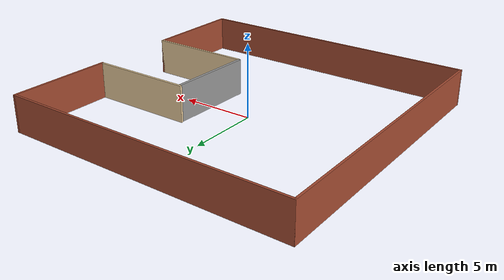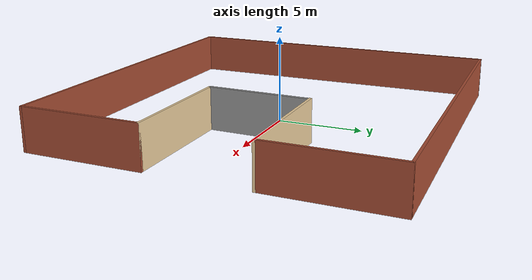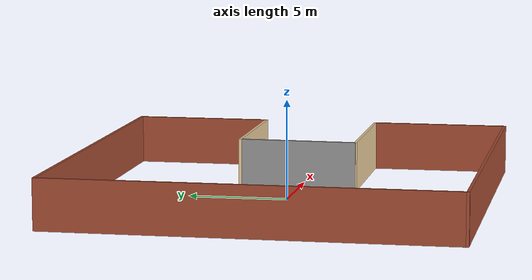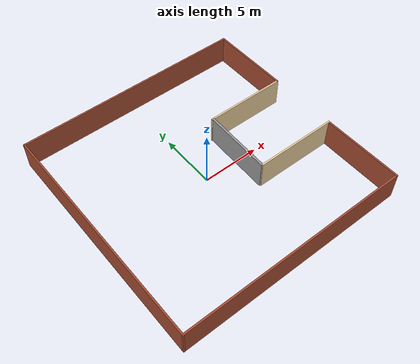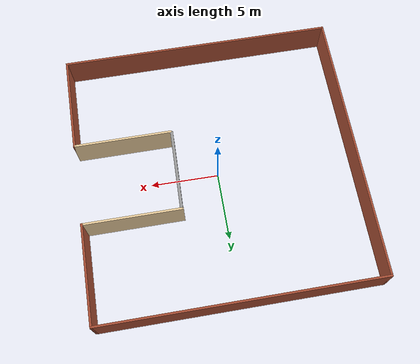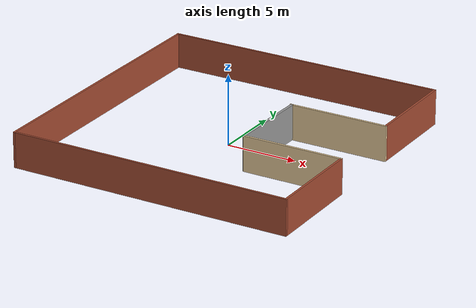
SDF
<?xml version='1.0'?>
<sdf version='1.6'>
  <model name='Building'>
    <pose frame=''>0 0 0 0 -0 0</pose>
    <link name='Door_0'>
      <collision name='Door_0_Collision'>
        <geometry>
          <box>
            <size>6 0.2 2.5</size>
          </box>
        </geometry>
        <pose frame=''>0 0 1.25 0 -0 0</pose>
      </collision>
      <visual name='Door_0_Visual'>
        <pose frame=''>0 0 1.25 0 -0 0</pose>
        <geometry>
          <box>
            <size>6 0.2 2.5</size>
          </box>
        </geometry>
        <material>
          <script>
            <uri>file://media/materials/scripts/gazebo.material</uri>
            <name>Gazebo/Grey</name>
          </script>
        </material>
      </visual>
      <pose frame=''>3 0 0 0 -0 1.54682</pose>
    </link>
    <link name='Wall_10'>
      <collision name='Wall_10_Collision'>
        <geometry>
          <box>
            <size>20.15 0.15 2.5</size>
          </box>
        </geometry>
        <pose frame=''>0 0 1.25 0 -0 0</pose>
      </collision>
      <visual name='Wall_10_Visual'>
        <pose frame=''>0 0 1.25 0 -0 0</pose>
        <geometry>
          <box>
            <size>20.15 0.15 2.5</size>
          </box>
        </geometry>
        <material>
          <script>
            <uri>file://media/materials/scripts/gazebo.material</uri>
            <name>Gazebo/Bricks</name>
          </script>
          <ambient>1 1 1 1</ambient>
        </material>
        <meta>
          <layer>0</layer>
        </meta>
      </visual>
      <pose frame=''>-10 0 0 0 -0 1.5708</pose>
    </link>
    <link name='Wall_11'>
      <collision name='Wall_11_Collision'>
        <geometry>
          <box>
            <size>20.15 0.15 2.5</size>
          </box>
        </geometry>
        <pose frame=''>0 0 1.25 0 -0 0</pose>
      </collision>
      <visual name='Wall_11_Visual'>
        <pose frame=''>0 0 1.25 0 -0 0</pose>
        <geometry>
          <box>
            <size>20.15 0.15 2.5</size>
          </box>
        </geometry>
        <material>
          <script>
            <uri>file://media/materials/scripts/gazebo.material</uri>
            <name>Gazebo/Bricks</name>
          </script>
          <ambient>1 1 1 1</ambient>
        </material>
        <meta>
          <layer>0</layer>
        </meta>
      </visual>
      <pose frame=''>0 10 0 0 -0 0</pose>
    </link>
    <link name='Wall_12'>
      <collision name='Wall_12_Collision'>
        <geometry>
          <box>
            <size>7.15 0.15 2.5</size>
          </box>
        </geometry>
        <pose frame=''>0 0 1.25 0 -0 0</pose>
      </collision>
      <visual name='Wall_12_Visual'>
        <pose frame=''>0 0 1.25 0 -0 0</pose>
        <geometry>
          <box>
            <size>7.15 0.15 2.5</size>
          </box>
        </geometry>
        <material>
          <script>
            <uri>file://media/materials/scripts/gazebo.material</uri>
            <name>Gazebo/Bricks</name>
          </script>
          <ambient>1 1 1 1</ambient>
        </material>
        <meta>
          <layer>0</layer>
        </meta>
      </visual>
      <pose frame=''>10 6.5 0 0 -0 -1.5708</pose>
    </link>
    <link name='Wall_13'>
      <collision name='Wall_13_Collision'>
        <geometry>
          <box>
            <size>7.15 0.15 2.5</size>
          </box>
        </geometry>
        <pose frame=''>0 0 1.25 0 -0 0</pose>
      </collision>
      <visual name='Wall_13_Visual'>
        <pose frame=''>0 0 1.25 0 -0 0</pose>
        <geometry>
          <box>
            <size>7.15 0.15 2.5</size>
          </box>
        </geometry>
        <material>
          <script>
            <uri>file://media/materials/scripts/gazebo.material</uri>
            <name>Gazebo/Grey</name>
          </script>
          <ambient>0.921569 0.807843 0.615686 1</ambient>
        </material>
        <meta>
          <layer>0</layer>
        </meta>
      </visual>
      <pose frame=''>6.5 3 0 0 -0 3.14159</pose>
    </link>
    <link name='Wall_7'>
      <collision name='Wall_7_Collision'>
        <geometry>
          <box>
            <size>7.15 0.15 2.5</size>
          </box>
        </geometry>
        <pose frame=''>0 0 1.25 0 -0 0</pose>
      </collision>
      <visual name='Wall_7_Visual'>
        <pose frame=''>0 0 1.25 0 -0 0</pose>
        <geometry>
          <box>
            <size>7.15 0.15 2.5</size>
          </box>
        </geometry>
        <material>
          <script>
            <uri>file://media/materials/scripts/gazebo.material</uri>
            <name>Gazebo/Grey</name>
          </script>
          <ambient>0.921569 0.807843 0.615686 1</ambient>
        </material>
        <meta>
          <layer>0</layer>
        </meta>
      </visual>
      <pose frame=''>6.5 -3 0 0 -0 0</pose>
    </link>
    <link name='Wall_8'>
      <collision name='Wall_8_Collision'>
        <geometry>
          <box>
            <size>7.15 0.15 2.5</size>
          </box>
        </geometry>
        <pose frame=''>0 0 1.25 0 -0 0</pose>
      </collision>
      <visual name='Wall_8_Visual'>
        <pose frame=''>0 0 1.25 0 -0 0</pose>
        <geometry>
          <box>
            <size>7.15 0.15 2.5</size>
          </box>
        </geometry>
        <material>
          <script>
            <uri>file://media/materials/scripts/gazebo.material</uri>
            <name>Gazebo/Bricks</name>
          </script>
          <ambient>1 1 1 1</ambient>
        </material>
        <meta>
          <layer>0</layer>
        </meta>
      </visual>
      <pose frame=''>10 -6.5 0 0 -0 -1.5708</pose>
    </link>
    <link name='Wall_9'>
      <collision name='Wall_9_Collision'>
        <geometry>
          <box>
            <size>20.15 0.15 2.5</size>
          </box>
        </geometry>
        <pose frame=''>0 0 1.25 0 -0 0</pose>
      </collision>
      <visual name='Wall_9_Visual'>
        <pose frame=''>0 0 1.25 0 -0 0</pose>
        <geometry>
          <box>
            <size>20.15 0.15 2.5</size>
          </box>
        </geometry>
        <material>
          <script>
            <uri>file://media/materials/scripts/gazebo.material</uri>
            <name>Gazebo/Bricks</name>
          </script>
          <ambient>1 1 1 1</ambient>
        </material>
        <meta>
          <layer>0</layer>
        </meta>
      </visual>
      <pose frame=''>0 -10 0 0 -0 3.14159</pose>
    </link>
    <static>1</static>
  </model>
</sdf>
